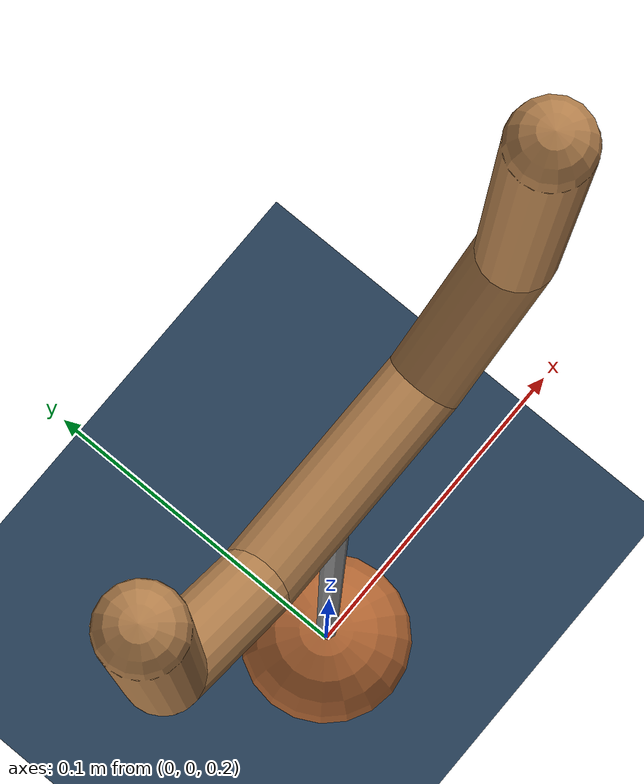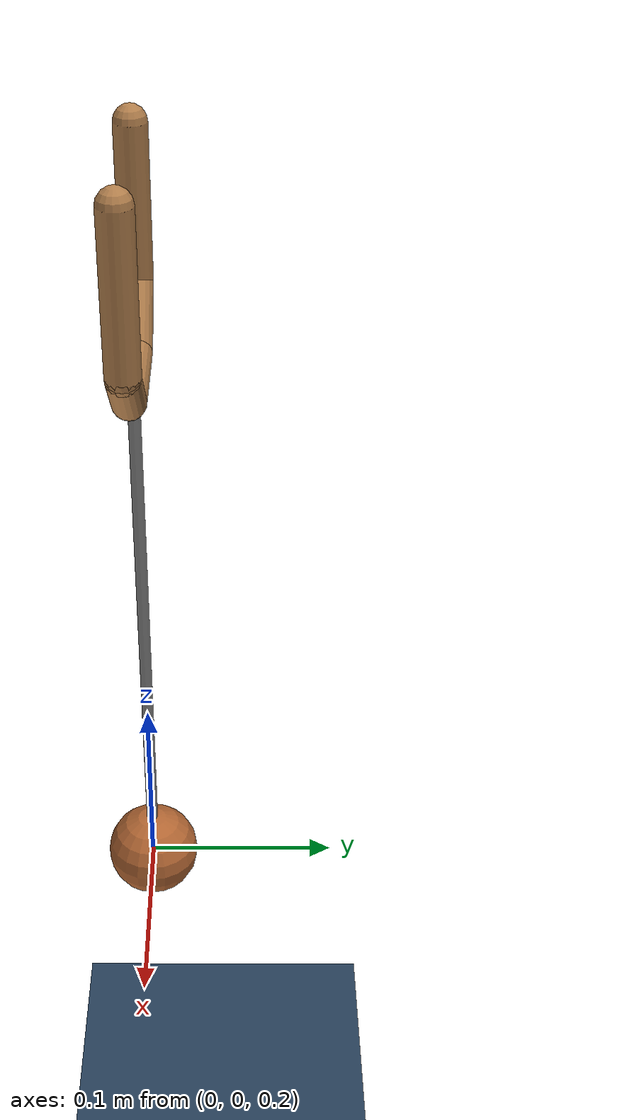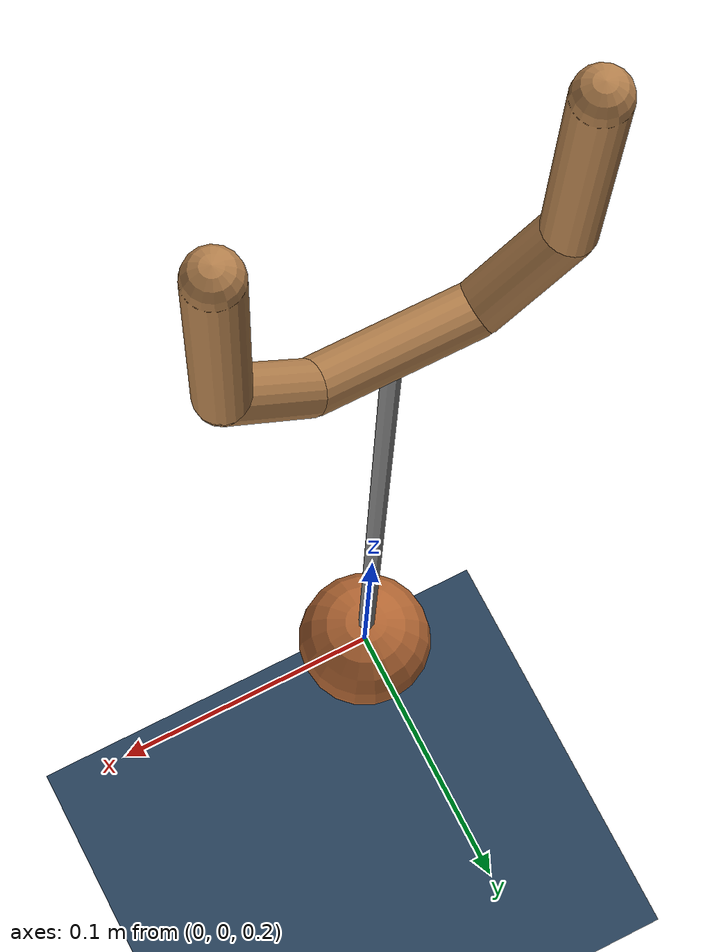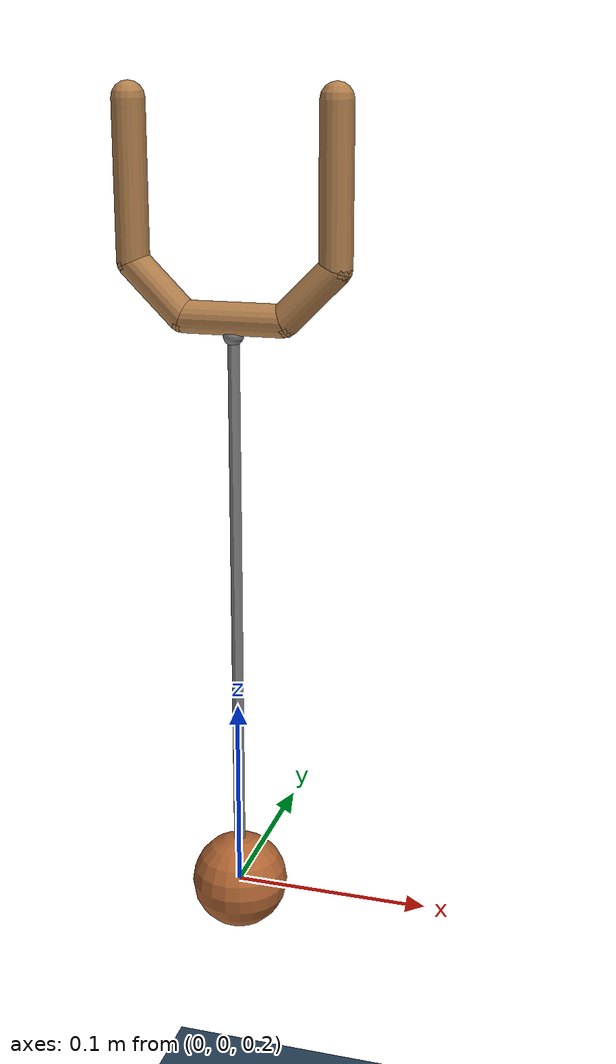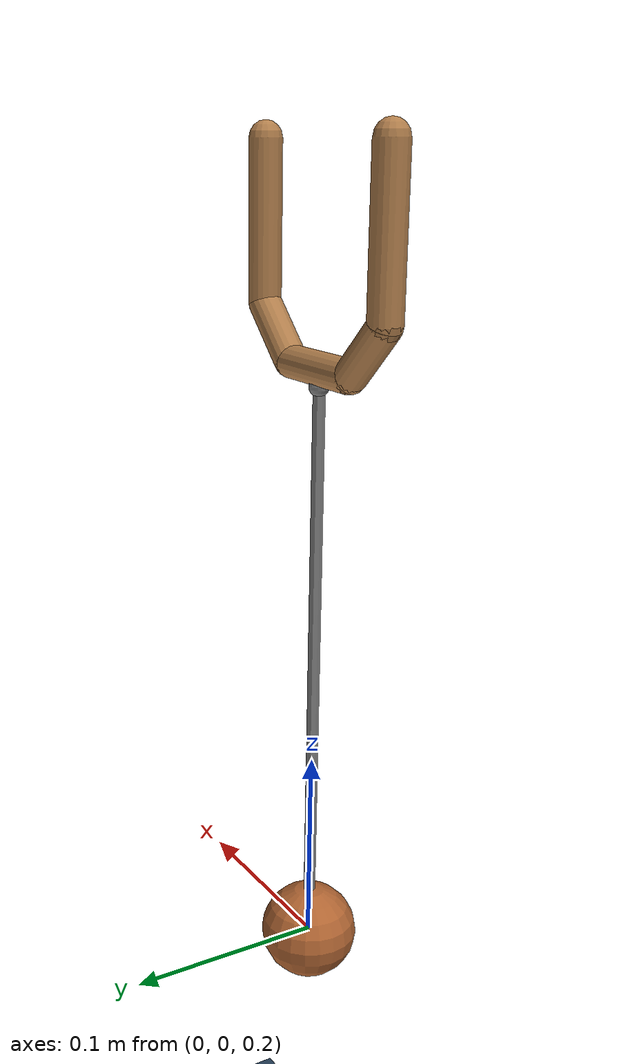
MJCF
<mujoco model="ball in cup">

  <option timestep="0.002"/>

  <!-- Inlined from dm_control suite common/{visual,skybox,materials}.xml so the
       model is self-contained yet looks exactly like the original env. -->
  <visual>
    <headlight ambient=".4 .4 .4" diffuse=".8 .8 .8" specular="0.1 0.1 0.1"/>
    <map znear=".01"/>
    <quality shadowsize="2048"/>
  </visual>

  <asset>
    <texture name="skybox" type="skybox" builtin="gradient" rgb1=".4 .6 .8" rgb2="0 0 0"
             width="800" height="800" mark="random" markrgb="1 1 1"/>
    <texture name="grid" type="2d" builtin="checker" rgb1=".1 .2 .3" rgb2=".2 .3 .4"
             width="300" height="300" mark="edge" markrgb=".2 .3 .4"/>
    <material name="grid" texture="grid" texrepeat="1 1" texuniform="true" reflectance=".2"/>
    <material name="self" rgba=".7 .5 .3 1"/>
    <material name="self_default" rgba=".7 .5 .3 1"/>
    <material name="self_highlight" rgba="0 .5 .3 1"/>
    <material name="effector" rgba=".7 .4 .2 1"/>
    <material name="effector_default" rgba=".7 .4 .2 1"/>
    <material name="effector_highlight" rgba="0 .5 .3 1"/>
    <material name="decoration" rgba=".3 .5 .7 1"/>
    <material name="eye" rgba="0 .2 1 1"/>
    <material name="target" rgba=".6 .3 .3 1"/>
    <material name="target_default" rgba=".6 .3 .3 1"/>
    <material name="target_highlight" rgba=".6 .3 .3 .4"/>
    <material name="site" rgba=".5 .5 .5 .3"/>
  </asset>

  <default>
    <motor ctrllimited="true" ctrlrange="-1 1" gear="5"/>
    <default class="cup">
      <joint type="slide" damping="3" stiffness="20"/>
      <geom type="capsule" size=".008" material="self"/>
    </default>
  </default>

  <worldbody>
    <light name="light" directional="true" diffuse=".6 .6 .6" pos="0 0 2" specular=".3 .3 .3"/>
    <geom name="ground" type="plane" pos="0 0 0" size=".6 .2 10" material="grid"/>
    <camera name="cam0" pos="0 -1 .8" xyaxes="1 0 0 0 1 2"/>
    <camera name="cam1" pos="0 -1 .4" xyaxes="1 0 0 0 0 1" />

    <body name="cup" pos="0 0 .6" childclass="cup">
      <joint name="cup_x" axis="1 0 0"/>
      <joint name="cup_z" axis="0 0 1"/>
      <geom name="cup_part_0" fromto="-.05 0 0 -.05 0 -.075" />
      <geom name="cup_part_1" fromto="-.05 0 -.075 -.025 0 -.1" />
      <geom name="cup_part_2" fromto="-.025 0 -.1 .025 0 -.1" />
      <geom name="cup_part_3" fromto=".025 0 -.1 .05 0 -.075" />
      <geom name="cup_part_4" fromto=".05 0 -.075 .05 0 0" />
      <site name="cup" pos="0 0 -.108" size=".005"/>
      <site name="target" type="box" pos="0 0 -.05" size=".05 .006 .05" group="4"/>
    </body>

    <body name="ball" pos="0 0 .2">
      <joint name="ball_x" type="slide" axis="1 0 0"/>
      <joint name="ball_z" type="slide" axis="0 0 1"/>
      <geom name="ball" type="sphere" size=".025" material="effector"/>
      <site name="ball" size=".005"/>
    </body>
  </worldbody>

  <actuator>
    <motor name="x" joint="cup_x"/>
    <motor name="z" joint="cup_z"/>
  </actuator>

  <tendon>
    <spatial name="string" limited="true" range="0 0.3" width="0.003">
      <site site="ball"/>
      <site site="cup"/>
    </spatial>
  </tendon>

</mujoco>
